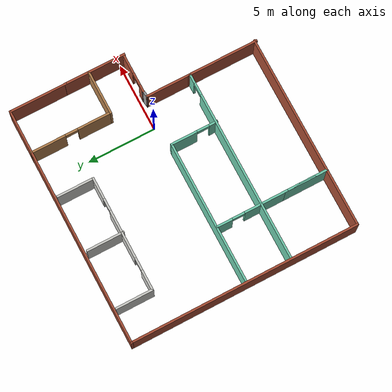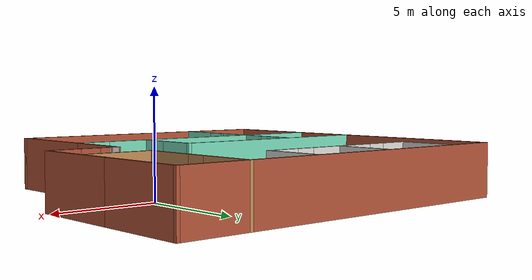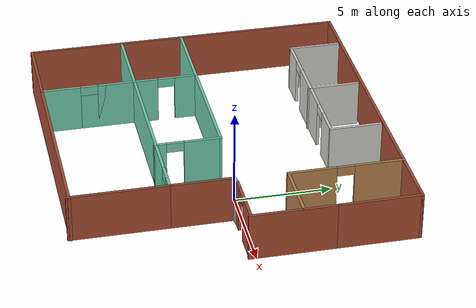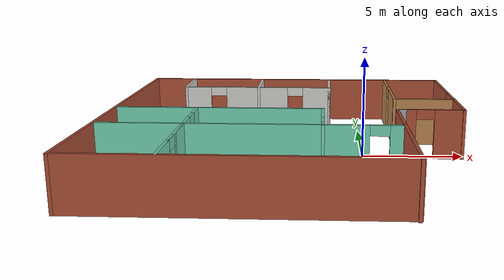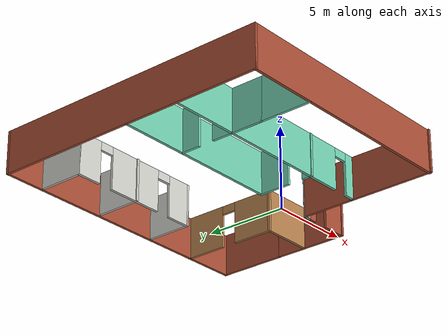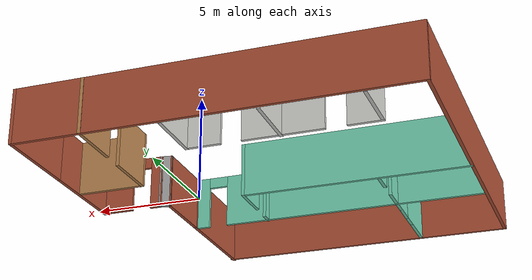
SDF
<?xml version='1.0'?>
<sdf version='1.6'>
  <model name='My_building'>
    <pose frame=''>-3.765 -0.202616 0 0 -0 0</pose>
    <link name='Wall_0'>
      <pose frame=''>7.25 -0.08333 0 0 -0 0</pose>
      <visual name='Wall_0_Visual_0'>
        <pose frame=''>-1.21198 0 1.25 0 -0 0</pose>
        <geometry>
          <box>
            <size>0.57604 0.15 2.5</size>
          </box>
        </geometry>
        <material>
          <script>
            <uri>file://media/materials/scripts/gazebo.material</uri>
            <name>Gazebo/Bricks</name>
          </script>
          <ambient>1 1 1 1</ambient>
        </material>
        <meta>
          <layer>0</layer>
        </meta>
      </visual>
      <collision name='Wall_0_Collision_0'>
        <geometry>
          <box>
            <size>0.57604 0.15 2.5</size>
          </box>
        </geometry>
        <pose frame=''>-1.21198 0 1.25 0 -0 0</pose>
      </collision>
      <visual name='Wall_0_Visual_1'>
        <pose frame=''>0.73802 0 1.25 0 -0 0</pose>
        <geometry>
          <box>
            <size>1.52396 0.15 2.5</size>
          </box>
        </geometry>
        <material>
          <script>
            <uri>file://media/materials/scripts/gazebo.material</uri>
            <name>Gazebo/Bricks</name>
          </script>
          <ambient>1 1 1 1</ambient>
        </material>
        <meta>
          <layer>0</layer>
        </meta>
      </visual>
      <collision name='Wall_0_Collision_1'>
        <geometry>
          <box>
            <size>1.52396 0.15 2.5</size>
          </box>
        </geometry>
        <pose frame=''>0.73802 0 1.25 0 -0 0</pose>
      </collision>
      <visual name='Wall_0_Visual_2'>
        <pose frame=''>-0.47396 0 2.25 0 -0 0</pose>
        <geometry>
          <box>
            <size>0.9 0.15 0.5</size>
          </box>
        </geometry>
        <material>
          <script>
            <uri>file://media/materials/scripts/gazebo.material</uri>
            <name>Gazebo/Bricks</name>
          </script>
          <ambient>1 1 1 1</ambient>
        </material>
        <meta>
          <layer>0</layer>
        </meta>
      </visual>
      <collision name='Wall_0_Collision_2'>
        <geometry>
          <box>
            <size>0.9 0.15 0.5</size>
          </box>
        </geometry>
        <pose frame=''>-0.47396 0 2.25 0 -0 0</pose>
      </collision>
    </link>
    <link name='Wall_10'>
      <collision name='Wall_10_Collision'>
        <geometry>
          <box>
            <size>3.25 0.15 2.5</size>
          </box>
        </geometry>
        <pose frame=''>0 0 1.25 0 -0 0</pose>
      </collision>
      <visual name='Wall_10_Visual'>
        <pose frame=''>0 0 1.25 0 -0 0</pose>
        <geometry>
          <box>
            <size>3.25 0.15 2.5</size>
          </box>
        </geometry>
        <material>
          <script>
            <uri>file://media/materials/scripts/gazebo.material</uri>
            <name>Gazebo/Bricks</name>
          </script>
          <ambient>1 1 1 1</ambient>
        </material>
        <meta>
          <layer>0</layer>
        </meta>
      </visual>
      <pose frame=''>5.39586 -1.70043 0 0 -0 1.5708</pose>
    </link>
    <link name='Wall_11'>
      <collision name='Wall_11_Collision'>
        <geometry>
          <box>
            <size>0.584358 0.15 2.5</size>
          </box>
        </geometry>
        <pose frame=''>0 0 1.25 0 -0 0</pose>
      </collision>
      <visual name='Wall_11_Visual'>
        <pose frame=''>0 0 1.25 0 -0 0</pose>
        <geometry>
          <box>
            <size>0.584358 0.15 2.5</size>
          </box>
        </geometry>
        <material>
          <script>
            <uri>file://media/materials/scripts/gazebo.material</uri>
            <name>Gazebo/Grey</name>
          </script>
          <ambient>1 1 1 1</ambient>
        </material>
        <meta>
          <layer>0</layer>
        </meta>
      </visual>
      <pose frame=''>5.61043 -0.116881 0 0 -0 0.155107</pose>
    </link>
    <link name='Wall_13'>
      <pose frame=''>-1.60533 -3.36158 0 0 -0 0</pose>
      <visual name='Wall_13_Visual_0'>
        <pose frame=''>-0.790462 0 1.25 0 -0 0</pose>
        <geometry>
          <box>
            <size>12.4191 0.15 2.5</size>
          </box>
        </geometry>
        <material>
          <script>
            <uri>file://media/materials/scripts/gazebo.material</uri>
            <name>Gazebo/Grey</name>
          </script>
          <ambient>0.435294 0.796078 0.67451 1</ambient>
        </material>
        <meta>
          <layer>0</layer>
        </meta>
      </visual>
      <collision name='Wall_13_Collision_0'>
        <geometry>
          <box>
            <size>12.4191 0.15 2.5</size>
          </box>
        </geometry>
        <pose frame=''>-0.790462 0 1.25 0 -0 0</pose>
      </collision>
      <visual name='Wall_13_Visual_1'>
        <pose frame=''>6.65954 0 1.25 0 -0 0</pose>
        <geometry>
          <box>
            <size>0.680924 0.15 2.5</size>
          </box>
        </geometry>
        <material>
          <script>
            <uri>file://media/materials/scripts/gazebo.material</uri>
            <name>Gazebo/Grey</name>
          </script>
          <ambient>0.435294 0.796078 0.67451 1</ambient>
        </material>
        <meta>
          <layer>0</layer>
        </meta>
      </visual>
      <collision name='Wall_13_Collision_1'>
        <geometry>
          <box>
            <size>0.680924 0.15 2.5</size>
          </box>
        </geometry>
        <pose frame=''>6.65954 0 1.25 0 -0 0</pose>
      </collision>
      <visual name='Wall_13_Visual_2'>
        <pose frame=''>5.86908 0 2.25 0 -0 0</pose>
        <geometry>
          <box>
            <size>0.9 0.15 0.5</size>
          </box>
        </geometry>
        <material>
          <script>
            <uri>file://media/materials/scripts/gazebo.material</uri>
            <name>Gazebo/Grey</name>
          </script>
          <ambient>0.435294 0.796078 0.67451 1</ambient>
        </material>
        <meta>
          <layer>0</layer>
        </meta>
      </visual>
      <collision name='Wall_13_Collision_2'>
        <geometry>
          <box>
            <size>0.9 0.15 0.5</size>
          </box>
        </geometry>
        <pose frame=''>5.86908 0 2.25 0 -0 0</pose>
      </collision>
    </link>
    <link name='Wall_15'>
      <collision name='Wall_15_Collision'>
        <geometry>
          <box>
            <size>10.5 0.15 2.5</size>
          </box>
        </geometry>
        <pose frame=''>0 0 1.25 0 -0 0</pose>
      </collision>
      <visual name='Wall_15_Visual'>
        <pose frame=''>0 0 1.25 0 -0 0</pose>
        <geometry>
          <box>
            <size>10.5 0.15 2.5</size>
          </box>
        </geometry>
        <material>
          <script>
            <uri>file://media/materials/scripts/gazebo.material</uri>
            <name>Gazebo/Grey</name>
          </script>
          <ambient>0.435294 0.796078 0.67451 1</ambient>
        </material>
        <meta>
          <layer>0</layer>
        </meta>
      </visual>
      <pose frame=''>-3.44837 -0.058384 0 0 -0 0</pose>
    </link>
    <link name='Wall_16'>
      <pose frame=''>1.72662 -1.73338 0 0 0 -1.5708</pose>
      <visual name='Wall_16_Visual_0'>
        <pose frame=''>-0.774402 0 1.25 0 -0 0</pose>
        <geometry>
          <box>
            <size>1.9512 0.15 2.5</size>
          </box>
        </geometry>
        <material>
          <script>
            <uri>file://media/materials/scripts/gazebo.material</uri>
            <name>Gazebo/Grey</name>
          </script>
          <ambient>0.435294 0.796078 0.67451 1</ambient>
        </material>
        <meta>
          <layer>0</layer>
        </meta>
      </visual>
      <collision name='Wall_16_Collision_0'>
        <geometry>
          <box>
            <size>1.9512 0.15 2.5</size>
          </box>
        </geometry>
        <pose frame=''>-0.774402 0 1.25 0 -0 0</pose>
      </collision>
      <visual name='Wall_16_Visual_1'>
        <pose frame=''>1.4256 0 1.25 0 -0 0</pose>
        <geometry>
          <box>
            <size>0.648804 0.15 2.5</size>
          </box>
        </geometry>
        <material>
          <script>
            <uri>file://media/materials/scripts/gazebo.material</uri>
            <name>Gazebo/Grey</name>
          </script>
          <ambient>0.435294 0.796078 0.67451 1</ambient>
        </material>
        <meta>
          <layer>0</layer>
        </meta>
      </visual>
      <collision name='Wall_16_Collision_1'>
        <geometry>
          <box>
            <size>0.648804 0.15 2.5</size>
          </box>
        </geometry>
        <pose frame=''>1.4256 0 1.25 0 -0 0</pose>
      </collision>
      <visual name='Wall_16_Visual_2'>
        <pose frame=''>0.651196 0 2.25 0 -0 0</pose>
        <geometry>
          <box>
            <size>0.9 0.15 0.5</size>
          </box>
        </geometry>
        <material>
          <script>
            <uri>file://media/materials/scripts/gazebo.material</uri>
            <name>Gazebo/Grey</name>
          </script>
          <ambient>0.435294 0.796078 0.67451 1</ambient>
        </material>
        <meta>
          <layer>0</layer>
        </meta>
      </visual>
      <collision name='Wall_16_Collision_2'>
        <geometry>
          <box>
            <size>0.9 0.15 0.5</size>
          </box>
        </geometry>
        <pose frame=''>0.651196 0 2.25 0 -0 0</pose>
      </collision>
    </link>
    <link name='Wall_18'>
      <collision name='Wall_18_Collision'>
        <geometry>
          <box>
            <size>3.25 0.15 2.5</size>
          </box>
        </geometry>
        <pose frame=''>0 0 1.25 0 -0 0</pose>
      </collision>
      <visual name='Wall_18_Visual'>
        <pose frame=''>0 0 1.25 0 -0 0</pose>
        <geometry>
          <box>
            <size>3.25 0.15 2.5</size>
          </box>
        </geometry>
        <material>
          <script>
            <uri>file://media/materials/scripts/gazebo.material</uri>
            <name>Gazebo/Wood</name>
          </script>
          <ambient>0.435294 0.796078 0.67451 1</ambient>
        </material>
        <meta>
          <layer>0</layer>
        </meta>
      </visual>
      <pose frame=''>7.087 2.50043 0 0 -0 3.14159</pose>
    </link>
    <link name='Wall_19'>
      <pose frame=''>5.537 5.42543 0 0 -0 1.5708</pose>
      <visual name='Wall_19_Visual_0'>
        <pose frame=''>-1.73631 0 1.25 0 -0 0</pose>
        <geometry>
          <box>
            <size>2.52738 0.15 2.5</size>
          </box>
        </geometry>
        <material>
          <script>
            <uri>file://media/materials/scripts/gazebo.material</uri>
            <name>Gazebo/Wood</name>
          </script>
          <ambient>0.435294 0.796078 0.67451 1</ambient>
        </material>
        <meta>
          <layer>0</layer>
        </meta>
      </visual>
      <collision name='Wall_19_Collision_0'>
        <geometry>
          <box>
            <size>2.52738 0.15 2.5</size>
          </box>
        </geometry>
        <pose frame=''>-1.73631 0 1.25 0 -0 0</pose>
      </collision>
      <visual name='Wall_19_Visual_1'>
        <pose frame=''>1.71369 0 1.25 0 -0 0</pose>
        <geometry>
          <box>
            <size>2.57262 0.15 2.5</size>
          </box>
        </geometry>
        <material>
          <script>
            <uri>file://media/materials/scripts/gazebo.material</uri>
            <name>Gazebo/Wood</name>
          </script>
          <ambient>0.435294 0.796078 0.67451 1</ambient>
        </material>
        <meta>
          <layer>0</layer>
        </meta>
      </visual>
      <collision name='Wall_19_Collision_1'>
        <geometry>
          <box>
            <size>2.57262 0.15 2.5</size>
          </box>
        </geometry>
        <pose frame=''>1.71369 0 1.25 0 -0 0</pose>
      </collision>
      <visual name='Wall_19_Visual_2'>
        <pose frame=''>-0.022624 0 2.25 0 -0 0</pose>
        <geometry>
          <box>
            <size>0.9 0.15 0.5</size>
          </box>
        </geometry>
        <material>
          <script>
            <uri>file://media/materials/scripts/gazebo.material</uri>
            <name>Gazebo/Wood</name>
          </script>
          <ambient>0.435294 0.796078 0.67451 1</ambient>
        </material>
        <meta>
          <layer>0</layer>
        </meta>
      </visual>
      <collision name='Wall_19_Collision_2'>
        <geometry>
          <box>
            <size>0.9 0.15 0.5</size>
          </box>
        </geometry>
        <pose frame=''>-0.022624 0 2.25 0 -0 0</pose>
      </collision>
    </link>
    <link name='Wall_2'>
      <collision name='Wall_2_Collision'>
        <geometry>
          <box>
            <size>4.52247 0.15 2.5</size>
          </box>
        </geometry>
        <pose frame=''>0 0 1.25 0 -0 0</pose>
      </collision>
      <visual name='Wall_2_Visual'>
        <pose frame=''>0 0 1.25 0 -0 0</pose>
        <geometry>
          <box>
            <size>4.52247 0.15 2.5</size>
          </box>
        </geometry>
        <material>
          <script>
            <uri>file://media/materials/scripts/gazebo.material</uri>
            <name>Gazebo/Bricks</name>
          </script>
          <ambient>0.435294 0.796078 0.67451 1</ambient>
        </material>
        <meta>
          <layer>0</layer>
        </meta>
      </visual>
      <pose frame=''>8.675 2.05638 0 0 -0 1.5708</pose>
    </link>
    <link name='Wall_22'>
      <collision name='Wall_22_Collision'>
        <geometry>
          <box>
            <size>2.75 0.15 2.5</size>
          </box>
        </geometry>
        <pose frame=''>0 0 1.25 0 -0 0</pose>
      </collision>
      <visual name='Wall_22_Visual'>
        <pose frame=''>0 0 1.25 0 -0 0</pose>
        <geometry>
          <box>
            <size>2.75 0.15 2.5</size>
          </box>
        </geometry>
        <material>
          <script>
            <uri>file://media/materials/scripts/gazebo.material</uri>
            <name>Gazebo/CeilingTiled</name>
          </script>
          <ambient>1 1 1 1</ambient>
        </material>
        <meta>
          <layer>0</layer>
        </meta>
      </visual>
      <pose frame=''>-6.25504 6.86233 0 0 0 -1.5708</pose>
    </link>
    <link name='Wall_23'>
      <pose frame=''>-2.08004 5.56233 0 0 -0 0</pose>
      <visual name='Wall_23_Visual_0'>
        <pose frame=''>-3.48228 0 1.25 0 -0 0</pose>
        <geometry>
          <box>
            <size>1.53544 0.15 2.5</size>
          </box>
        </geometry>
        <material>
          <script>
            <uri>file://media/materials/scripts/gazebo.material</uri>
            <name>Gazebo/CeilingTiled</name>
          </script>
          <ambient>1 1 1 1</ambient>
        </material>
        <meta>
          <layer>0</layer>
        </meta>
      </visual>
      <collision name='Wall_23_Collision_0'>
        <geometry>
          <box>
            <size>1.53544 0.15 2.5</size>
          </box>
        </geometry>
        <pose frame=''>-3.48228 0 1.25 0 -0 0</pose>
      </collision>
      <visual name='Wall_23_Visual_1'>
        <pose frame=''>-0.035712 0 1.25 0 -0 0</pose>
        <geometry>
          <box>
            <size>3.55769 0.15 2.5</size>
          </box>
        </geometry>
        <material>
          <script>
            <uri>file://media/materials/scripts/gazebo.material</uri>
            <name>Gazebo/CeilingTiled</name>
          </script>
          <ambient>1 1 1 1</ambient>
        </material>
        <meta>
          <layer>0</layer>
        </meta>
      </visual>
      <collision name='Wall_23_Collision_1'>
        <geometry>
          <box>
            <size>3.55769 0.15 2.5</size>
          </box>
        </geometry>
        <pose frame=''>-0.035712 0 1.25 0 -0 0</pose>
      </collision>
      <visual name='Wall_23_Visual_2'>
        <pose frame=''>3.44657 0 1.25 0 -0 0</pose>
        <geometry>
          <box>
            <size>1.60686 0.15 2.5</size>
          </box>
        </geometry>
        <material>
          <script>
            <uri>file://media/materials/scripts/gazebo.material</uri>
            <name>Gazebo/CeilingTiled</name>
          </script>
          <ambient>1 1 1 1</ambient>
        </material>
        <meta>
          <layer>0</layer>
        </meta>
      </visual>
      <collision name='Wall_23_Collision_2'>
        <geometry>
          <box>
            <size>1.60686 0.15 2.5</size>
          </box>
        </geometry>
        <pose frame=''>3.44657 0 1.25 0 -0 0</pose>
      </collision>
      <visual name='Wall_23_Visual_3'>
        <pose frame=''>-2.26456 0 2.25 0 -0 0</pose>
        <geometry>
          <box>
            <size>0.9 0.15 0.5</size>
          </box>
        </geometry>
        <material>
          <script>
            <uri>file://media/materials/scripts/gazebo.material</uri>
            <name>Gazebo/CeilingTiled</name>
          </script>
          <ambient>1 1 1 1</ambient>
        </material>
        <meta>
          <layer>0</layer>
        </meta>
      </visual>
      <collision name='Wall_23_Collision_3'>
        <geometry>
          <box>
            <size>0.9 0.15 0.5</size>
          </box>
        </geometry>
        <pose frame=''>-2.26456 0 2.25 0 -0 0</pose>
      </collision>
      <visual name='Wall_23_Visual_4'>
        <pose frame=''>2.19313 0 2.25 0 -0 0</pose>
        <geometry>
          <box>
            <size>0.9 0.15 0.5</size>
          </box>
        </geometry>
        <material>
          <script>
            <uri>file://media/materials/scripts/gazebo.material</uri>
            <name>Gazebo/CeilingTiled</name>
          </script>
          <ambient>1 1 1 1</ambient>
        </material>
        <meta>
          <layer>0</layer>
        </meta>
      </visual>
      <collision name='Wall_23_Collision_4'>
        <geometry>
          <box>
            <size>0.9 0.15 0.5</size>
          </box>
        </geometry>
        <pose frame=''>2.19313 0 2.25 0 -0 0</pose>
      </collision>
    </link>
    <link name='Wall_24'>
      <collision name='Wall_24_Collision'>
        <geometry>
          <box>
            <size>2.75 0.15 2.5</size>
          </box>
        </geometry>
        <pose frame=''>0 0 1.25 0 -0 0</pose>
      </collision>
      <visual name='Wall_24_Visual'>
        <pose frame=''>0 0 1.25 0 -0 0</pose>
        <geometry>
          <box>
            <size>2.75 0.15 2.5</size>
          </box>
        </geometry>
        <material>
          <script>
            <uri>file://media/materials/scripts/gazebo.material</uri>
            <name>Gazebo/CeilingTiled</name>
          </script>
          <ambient>1 1 1 1</ambient>
        </material>
        <meta>
          <layer>0</layer>
        </meta>
      </visual>
      <pose frame=''>2.09496 6.86233 0 0 -0 1.5708</pose>
    </link>
    <link name='Wall_26'>
      <collision name='Wall_26_Collision'>
        <geometry>
          <box>
            <size>2.75 0.15 2.5</size>
          </box>
        </geometry>
        <pose frame=''>0 0 1.25 0 -0 0</pose>
      </collision>
      <visual name='Wall_26_Visual'>
        <pose frame=''>0 0 1.25 0 -0 0</pose>
        <geometry>
          <box>
            <size>2.75 0.15 2.5</size>
          </box>
        </geometry>
        <material>
          <script>
            <uri>file://media/materials/scripts/gazebo.material</uri>
            <name>Gazebo/CeilingTiled</name>
          </script>
          <ambient>1 1 1 1</ambient>
        </material>
        <meta>
          <layer>0</layer>
        </meta>
      </visual>
      <pose frame=''>-2.00962 6.79158 0 0 0 -1.5708</pose>
    </link>
    <link name='Wall_28'>
      <collision name='Wall_28_Collision'>
        <geometry>
          <box>
            <size>5 0.15 2.5</size>
          </box>
        </geometry>
        <pose frame=''>0 0 1.25 0 -0 0</pose>
      </collision>
      <visual name='Wall_28_Visual'>
        <pose frame=''>0 0 1.25 0 -0 0</pose>
        <geometry>
          <box>
            <size>5 0.15 2.5</size>
          </box>
        </geometry>
        <material>
          <script>
            <uri>file://media/materials/scripts/gazebo.material</uri>
            <name>Gazebo/Grey</name>
          </script>
          <ambient>0.435294 0.796078 0.67451 1</ambient>
        </material>
        <meta>
          <layer>0</layer>
        </meta>
      </visual>
      <pose frame=''>-4.55687 -5.79607 0 0 0 -1.5708</pose>
    </link>
    <link name='Wall_29'>
      <pose frame=''>-4.55687 -4.17107 0 0 -0 1.5708</pose>
      <visual name='Wall_29_Visual_0'>
        <pose frame=''>-3.09037 0 1.25 0 -0 0</pose>
        <geometry>
          <box>
            <size>2.06926 0.15 2.5</size>
          </box>
        </geometry>
        <material>
          <script>
            <uri>file://media/materials/scripts/gazebo.material</uri>
            <name>Gazebo/Grey</name>
          </script>
          <ambient>0.435294 0.796078 0.67451 1</ambient>
        </material>
        <meta>
          <layer>0</layer>
        </meta>
      </visual>
      <collision name='Wall_29_Collision_0'>
        <geometry>
          <box>
            <size>2.06926 0.15 2.5</size>
          </box>
        </geometry>
        <pose frame=''>-3.09037 0 1.25 0 -0 0</pose>
      </collision>
      <visual name='Wall_29_Visual_1'>
        <pose frame=''>0.446215 0 1.25 0 -0 0</pose>
        <geometry>
          <box>
            <size>3.20391 0.15 2.5</size>
          </box>
        </geometry>
        <material>
          <script>
            <uri>file://media/materials/scripts/gazebo.material</uri>
            <name>Gazebo/Grey</name>
          </script>
          <ambient>0.435294 0.796078 0.67451 1</ambient>
        </material>
        <meta>
          <layer>0</layer>
        </meta>
      </visual>
      <collision name='Wall_29_Collision_1'>
        <geometry>
          <box>
            <size>3.20391 0.15 2.5</size>
          </box>
        </geometry>
        <pose frame=''>0.446215 0 1.25 0 -0 0</pose>
      </collision>
      <visual name='Wall_29_Visual_2'>
        <pose frame=''>3.53659 0 1.25 0 -0 0</pose>
        <geometry>
          <box>
            <size>1.17683 0.15 2.5</size>
          </box>
        </geometry>
        <material>
          <script>
            <uri>file://media/materials/scripts/gazebo.material</uri>
            <name>Gazebo/Grey</name>
          </script>
          <ambient>0.435294 0.796078 0.67451 1</ambient>
        </material>
        <meta>
          <layer>0</layer>
        </meta>
      </visual>
      <collision name='Wall_29_Collision_2'>
        <geometry>
          <box>
            <size>1.17683 0.15 2.5</size>
          </box>
        </geometry>
        <pose frame=''>3.53659 0 1.25 0 -0 0</pose>
      </collision>
      <visual name='Wall_29_Visual_3'>
        <pose frame=''>-1.60574 0 2.25 0 -0 0</pose>
        <geometry>
          <box>
            <size>0.9 0.15 0.5</size>
          </box>
        </geometry>
        <material>
          <script>
            <uri>file://media/materials/scripts/gazebo.material</uri>
            <name>Gazebo/Grey</name>
          </script>
          <ambient>0.435294 0.796078 0.67451 1</ambient>
        </material>
        <meta>
          <layer>0</layer>
        </meta>
      </visual>
      <collision name='Wall_29_Collision_3'>
        <geometry>
          <box>
            <size>0.9 0.15 0.5</size>
          </box>
        </geometry>
        <pose frame=''>-1.60574 0 2.25 0 -0 0</pose>
      </collision>
      <visual name='Wall_29_Visual_4'>
        <pose frame=''>2.49817 0 2.25 0 -0 0</pose>
        <geometry>
          <box>
            <size>0.9 0.15 0.5</size>
          </box>
        </geometry>
        <material>
          <script>
            <uri>file://media/materials/scripts/gazebo.material</uri>
            <name>Gazebo/Grey</name>
          </script>
          <ambient>0.435294 0.796078 0.67451 1</ambient>
        </material>
        <meta>
          <layer>0</layer>
        </meta>
      </visual>
      <collision name='Wall_29_Collision_4'>
        <geometry>
          <box>
            <size>0.9 0.15 0.5</size>
          </box>
        </geometry>
        <pose frame=''>2.49817 0 2.25 0 -0 0</pose>
      </collision>
    </link>
    <link name='Wall_3'>
      <collision name='Wall_3_Collision'>
        <geometry>
          <box>
            <size>4.25 0.15 2.5</size>
          </box>
        </geometry>
        <pose frame=''>0 0 1.25 0 -0 0</pose>
      </collision>
      <visual name='Wall_3_Visual'>
        <pose frame=''>0 0 1.25 0 -0 0</pose>
        <geometry>
          <box>
            <size>4.25 0.15 2.5</size>
          </box>
        </geometry>
        <material>
          <script>
            <uri>file://media/materials/scripts/gazebo.material</uri>
            <name>Gazebo/Bricks</name>
          </script>
          <ambient>1 1 1 1</ambient>
        </material>
        <meta>
          <layer>0</layer>
        </meta>
      </visual>
      <pose frame=''>8.675 6.29262 0 0 -0 1.5708</pose>
    </link>
    <link name='Wall_4'>
      <collision name='Wall_4_Collision'>
        <geometry>
          <box>
            <size>17.5 0.15 2.5</size>
          </box>
        </geometry>
        <pose frame=''>0 0 1.25 0 -0 0</pose>
      </collision>
      <visual name='Wall_4_Visual'>
        <pose frame=''>0 0 1.25 0 -0 0</pose>
        <geometry>
          <box>
            <size>17.5 0.15 2.5</size>
          </box>
        </geometry>
        <material>
          <script>
            <uri>file://media/materials/scripts/gazebo.material</uri>
            <name>Gazebo/Bricks</name>
          </script>
          <ambient>1 1 1 1</ambient>
        </material>
        <meta>
          <layer>0</layer>
        </meta>
      </visual>
      <pose frame=''>0 8.34262 0 0 -0 3.14159</pose>
    </link>
    <link name='Wall_5'>
      <collision name='Wall_5_Collision'>
        <geometry>
          <box>
            <size>16.75 0.15 2.5</size>
          </box>
        </geometry>
        <pose frame=''>0 0 1.25 0 -0 0</pose>
      </collision>
      <visual name='Wall_5_Visual'>
        <pose frame=''>0 0 1.25 0 -0 0</pose>
        <geometry>
          <box>
            <size>16.75 0.15 2.5</size>
          </box>
        </geometry>
        <material>
          <script>
            <uri>file://media/materials/scripts/gazebo.material</uri>
            <name>Gazebo/Bricks</name>
          </script>
          <ambient>1 1 1 1</ambient>
        </material>
        <meta>
          <layer>0</layer>
        </meta>
      </visual>
      <pose frame=''>-8.675 0.042616 0 0 0 -1.5708</pose>
    </link>
    <link name='Wall_6'>
      <collision name='Wall_6_Collision'>
        <geometry>
          <box>
            <size>14.2674 0.15 2.5</size>
          </box>
        </geometry>
        <pose frame=''>0 0 1.25 0 -0 0</pose>
      </collision>
      <visual name='Wall_6_Visual'>
        <pose frame=''>0 0 1.25 0 -0 0</pose>
        <geometry>
          <box>
            <size>14.2674 0.15 2.5</size>
          </box>
        </geometry>
        <material>
          <script>
            <uri>file://media/materials/scripts/gazebo.material</uri>
            <name>Gazebo/Bricks</name>
          </script>
          <ambient>1 1 1 1</ambient>
        </material>
        <meta>
          <layer>0</layer>
        </meta>
      </visual>
      <pose frame=''>-1.61631 -8.25738 0 0 -0 0</pose>
    </link>
    <link name='Wall_7'>
      <collision name='Wall_7_Collision'>
        <geometry>
          <box>
            <size>5.25 0.15 2.5</size>
          </box>
        </geometry>
        <pose frame=''>0 0 1.25 0 -0 0</pose>
      </collision>
      <visual name='Wall_7_Visual'>
        <pose frame=''>0 0 1.25 0 -0 0</pose>
        <geometry>
          <box>
            <size>5.25 0.15 2.5</size>
          </box>
        </geometry>
        <material>
          <script>
            <uri>file://media/materials/scripts/gazebo.material</uri>
            <name>Gazebo/Bricks</name>
          </script>
          <ambient>1 1 1 1</ambient>
        </material>
        <meta>
          <layer>0</layer>
        </meta>
      </visual>
      <pose frame=''>5.39586 -5.80043 0 0 -0 1.5708</pose>
    </link>
    <static>1</static>
  </model>
</sdf>
